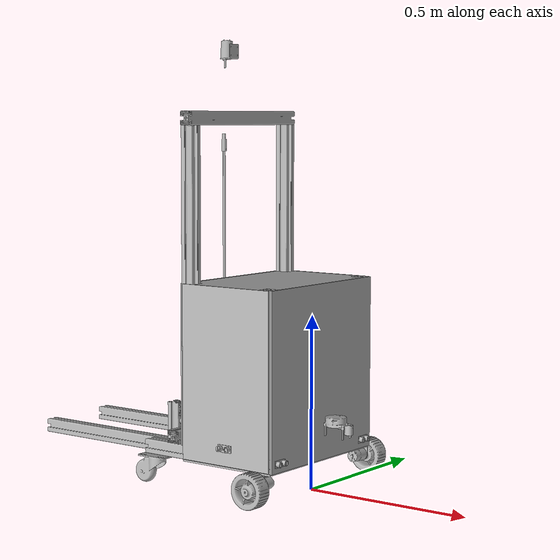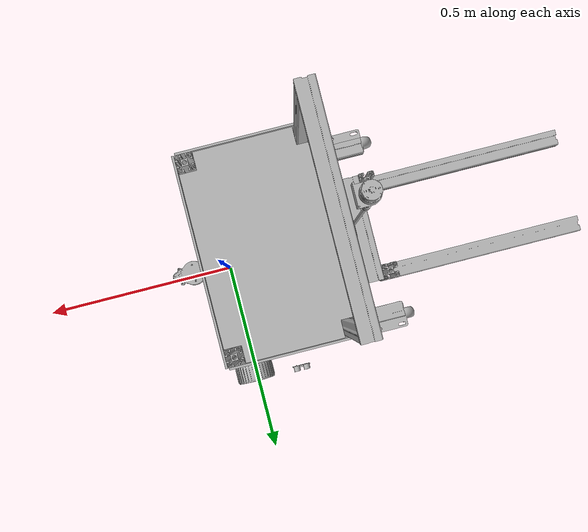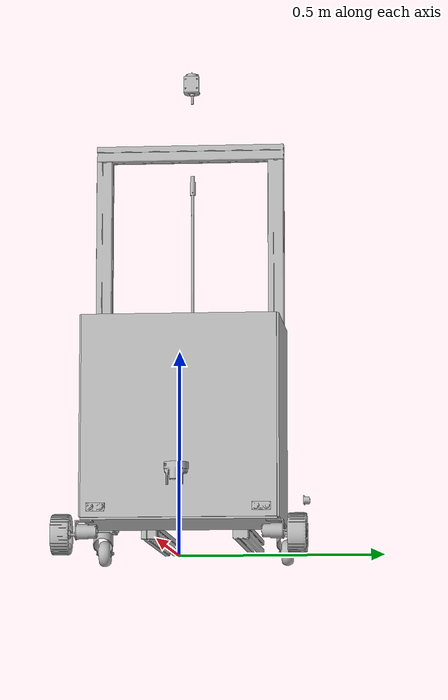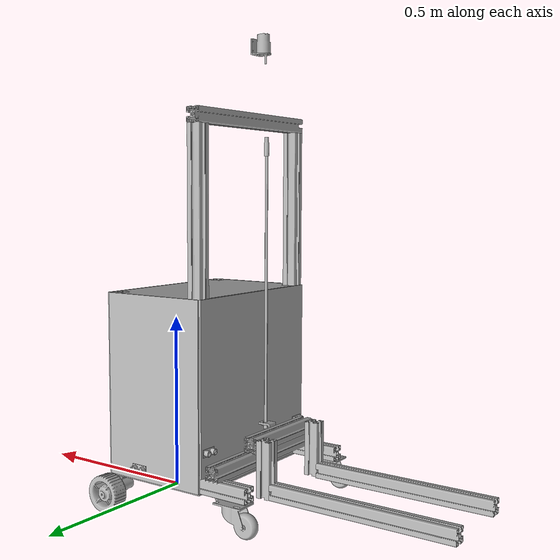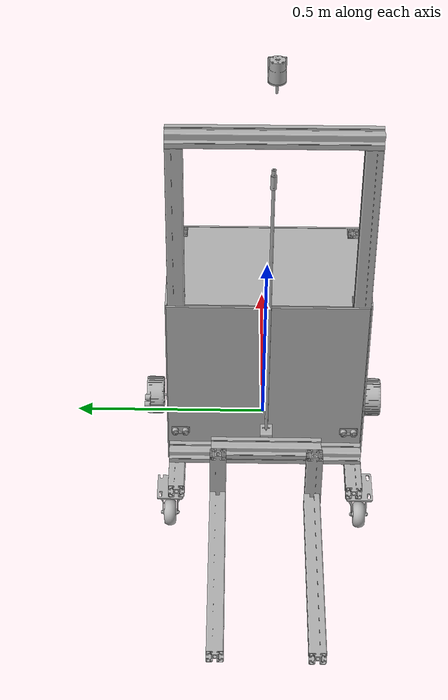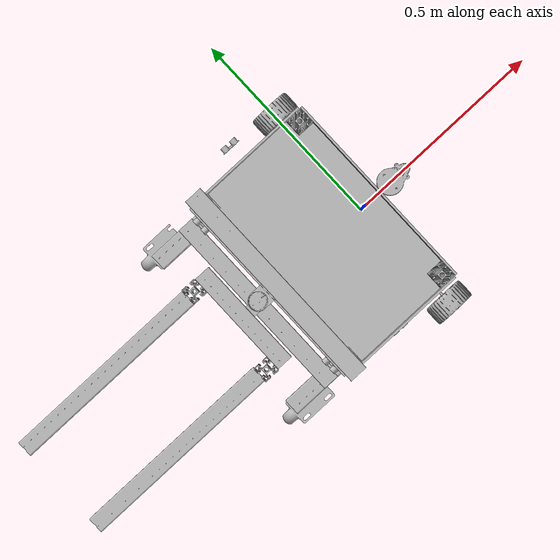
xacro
<?xml version="1.0"?>
<robot name="fork_robot" xmlns:xacro="http://www.ros.org/wiki/xacro">
  <xacro:arg name="use_camera" default="false" />

<material name="silver">
  <color rgba="0.700 0.700 0.700 1.000"/>
</material>

<link name="base_link">
  <inertial>
    <origin xyz="-0.20798536917927715 0.6074770385144476 0.0025" rpy="0 0 0"/>
    <mass value="6.943770210382302"/>
    <inertia ixx="0.053873" iyy="0.194565" izz="0.248409" ixy="-1.9e-05" iyz="0.0" ixz="0.0"/>
  </inertial>
  <visual>
    <origin xyz="0 0 0" rpy="0 0 0"/>
    <geometry>
      <mesh filename="file://$(find mybot_description)/meshes/base_link.stl" scale="0.001 0.001 0.001"/>
    </geometry>
    <material name="silver"/>
  </visual>
  <collision><origin xyz="-0.208 0.6075 0.34" rpy="0 0 0"/><geometry><box size="0.6 0.325 0.68"/></geometry></collision>
</link>

<link name="left_motor_link_1">
  <inertial>
    <origin xyz="-0.025746420161885983 -5.5906449600851005e-06 0.006676741521228598" rpy="0 0 0"/>
    <mass value="0.12785022222079845"/>
    <inertia ixx="2.3e-05" iyy="5.6e-05" izz="5.6e-05" ixy="-0.0" iyz="0.0" ixz="2e-06"/>
  </inertial>
  <visual>
    <origin xyz="-0.097079 -0.484372 0.034" rpy="0 0 0"/>
    <geometry>
      <mesh filename="file://$(find mybot_description)/meshes/left_motor_link_1.stl" scale="0.001 0.001 0.001"/>
    </geometry>
    <material name="silver"/>
  </visual>
</link>

<link name="right_motor_link_1">
  <inertial>
    <origin xyz="0.025746420161885775 3.9798783471045596e-06 0.006673230990990191" rpy="0 0 0"/>
    <mass value="0.12785022222079845"/>
    <inertia ixx="2.3e-05" iyy="5.6e-05" izz="5.6e-05" ixy="-0.0" iyz="-0.0" ixz="-2e-06"/>
  </inertial>
  <visual>
    <origin xyz="0.512989 -0.484372 0.034" rpy="0 0 0"/>
    <geometry>
      <mesh filename="file://$(find mybot_description)/meshes/right_motor_link_1.stl" scale="0.001 0.001 0.001"/>
    </geometry>
    <material name="silver"/>
  </visual>
</link>

<link name="left_wheel_link_1">
  <inertial>
    <origin xyz="2.589702400856986e-07 -2.0531276034851942e-07 3.703704010149522e-13" rpy="0 0 0"/>
    <mass value="1.9401899677229664"/>
    <inertia ixx="0.002715" iyy="0.001642" izz="0.001642" ixy="0.0" iyz="-0.0" ixz="0.0"/>
  </inertial>
  <visual>
    <origin xyz="-0.130827 -0.484372 0.034" rpy="0 0 0"/>
    <geometry>
      <mesh filename="file://$(find mybot_description)/meshes/left_wheel_link_1.stl" scale="0.001 0.001 0.001"/>
    </geometry>
    <material name="silver"/>
  </visual>
  <collision><origin xyz="2.5897e-07 -2.05313e-07 3.7037e-13" rpy="0 1.5708 0"/><geometry><cylinder radius="0.053" length="0.04"/></geometry></collision>
</link>

<link name="right_wheel_link_1">
  <inertial>
    <origin xyz="5.004531045127436e-08 -2.0517171461786887e-07 2.9867081030587883e-13" rpy="0 0 0"/>
    <mass value="1.9401899677229664"/>
    <inertia ixx="0.002715" iyy="0.001642" izz="0.001642" ixy="0.0" iyz="-0.0" ixz="0.0"/>
  </inertial>
  <visual>
    <origin xyz="0.54774 -0.484372 0.034" rpy="0 0 0"/>
    <geometry>
      <mesh filename="file://$(find mybot_description)/meshes/right_wheel_link_1.stl" scale="0.001 0.001 0.001"/>
    </geometry>
    <material name="silver"/>
  </visual>
  <collision><origin xyz="5.00453e-08 -2.05172e-07 2.98671e-13" rpy="0 1.5708 0"/><geometry><cylinder radius="0.053" length="0.04"/></geometry></collision>
</link>

<link name="fork_rear_slot_right_link_1">
  <inertial>
    <origin xyz="0.020000308159449587 0.016999794757661002 -0.5499999999999772" rpy="0 0 0"/>
    <mass value="1.6079227622387897"/>
    <inertia ixx="0.16237" iyy="0.16237" izz="0.000475" ixy="-0.0" iyz="-0.0" ixz="-0.0"/>
  </inertial>
  <visual>
    <origin xyz="0.497455 -0.725081 -1.145" rpy="0 0 0"/>
    <geometry>
      <mesh filename="file://$(find mybot_description)/meshes/fork_rear_slot_right_link_1.stl" scale="0.001 0.001 0.001"/>
    </geometry>
    <material name="silver"/>
  </visual>
</link>

<link name="lead_motor_link_1">
  <inertial>
    <origin xyz="-5.571494613665351e-06 -0.006675563568607545 0.025746024624354158" rpy="0 0 0"/>
    <mass value="0.12785022222079845"/>
    <inertia ixx="5.6e-05" iyy="5.6e-05" izz="2.3e-05" ixy="-0.0" iyz="2e-06" ixz="-0.0"/>
  </inertial>
  <visual>
    <origin xyz="0.209955 -0.796081 -1.1343" rpy="0 0 0"/>
    <geometry>
      <mesh filename="file://$(find mybot_description)/meshes/lead_motor_link_1.stl" scale="0.001 0.001 0.001"/>
    </geometry>
    <material name="silver"/>
  </visual>
</link>

<link name="coupling_link_1">
  <inertial>
    <origin xyz="-0.7798636919107719 0.7960807588890809 1.1183430344970238" rpy="0 0 0"/>
    <mass value="0.03211224123272413"/>
    <inertia ixx="5e-06" iyy="5e-06" izz="1e-06" ixy="-0.0" iyz="-0.0" ixz="-0.0"/>
  </inertial>
  <visual>
    <origin xyz="-0.569909 0.0 0.0215" rpy="0 0 0"/>
    <geometry>
      <mesh filename="file://$(find mybot_description)/meshes/coupling_link_1.stl" scale="0.001 0.001 0.001"/>
    </geometry>
    <material name="silver"/>
  </visual>
</link>

<link name="lead_screw_link_1">
  <inertial>
    <origin xyz="0.209955 -0.796081 -1.09405" rpy="0 0 0"/>
    <mass value="0.0"/>
    <inertia ixx="0.0" iyy="0.0" izz="0.0" ixy="0.0" iyz="0.0" ixz="0.0"/>
  </inertial>
  <visual>
    <origin xyz="0.209955 -0.796081 -1.09405" rpy="0 0 0"/>
    <geometry>
      <mesh filename="file://$(find mybot_description)/meshes/lead_screw_link_1.stl" scale="0.001 0.001 0.001"/>
    </geometry>
    <material name="silver"/>
  </visual>
</link>

<link name="fork_coupling_link_1">
  <inertial>
    <origin xyz="3.704621314715162e-07 -1.82611086141371e-07 -0.003490428234806414" rpy="0 0 0"/>
    <mass value="0.012051917875242903"/>
    <inertia ixx="0.0" iyy="0.0" izz="1e-06" ixy="0.0" iyz="0.0" ixz="0.0"/>
  </inertial>
  <visual>
    <origin xyz="0.209955 -0.796081 -0.17155" rpy="0 0 0"/>
    <geometry>
      <mesh filename="file://$(find mybot_description)/meshes/fork_coupling_link_1.stl" scale="0.001 0.001 0.001"/>
    </geometry>
    <material name="silver"/>
  </visual>
</link>

<link name="fork_holder_link_1">
  <inertial>
    <origin xyz="0 0 0" rpy="0 0 0"/>
    <mass value="0.06369340089197861"/>
    <inertia ixx="1.3e-05" iyy="1e-05" izz="1.3e-05" ixy="0.0" iyz="4e-06" ixz="-0.0"/>
  </inertial>
  <visual>
    <origin xyz="0.209955 -0.808169 -0.167762" rpy="0 0 0"/>
    <geometry>
      <mesh filename="file://$(find mybot_description)/meshes/fork_holder_link_1.stl" scale="0.001 0.001 0.001"/>
    </geometry>
    <material name="silver"/>
  </visual>
</link>

<link name="fork_center_slot_1">
  <inertial>
    <origin xyz="3.080890577378259e-07 0.02000049498194556 -0.01140000000014843" rpy="0 0 0"/>
    <mass value="0.3946719507313423"/>
    <inertia ixx="0.000117" iyy="0.002456" izz="0.002456" ixy="0.0" iyz="-0.0" ixz="0.0"/>
  </inertial>
  <visual>
    <origin xyz="0.209955 -0.819621 -0.16005" rpy="0 0 0"/>
    <geometry>
      <mesh filename="file://$(find mybot_description)/meshes/fork_center_slot_1.stl" scale="0.001 0.001 0.001"/>
    </geometry>
    <material name="silver"/>
  </visual>
</link>

<link name="fork_left_link_1">
  <inertial>
    <origin xyz="-0.01699969191092429 0.25000049498193877 0.020000000000006565" rpy="0 0 0"/>
    <mass value="0.7308739828358146"/>
    <inertia ixx="0.015334" iyy="0.000216" izz="0.015334" ixy="-0.0" iyz="0.0" ixz="0.0"/>
  </inertial>
  <visual>
    <origin xyz="0.074955 -0.899621 -0.01565" rpy="0 0 0"/>
    <geometry>
      <mesh filename="file://$(find mybot_description)/meshes/fork_left_link_1.stl" scale="0.001 0.001 0.001"/>
    </geometry>
    <material name="silver"/>
  </visual>
  <collision><origin xyz="-0.0169997 0.25 0.02" rpy="0 0 0"/><geometry><box size="0.04 0.5 0.04"/></geometry></collision>
</link>

<link name="fork_right_link_1">
  <inertial>
    <origin xyz="0.02000030808907538 0.250000494981947 0.017000000000006104" rpy="0 0 0"/>
    <mass value="0.730873982835814"/>
    <inertia ixx="0.015334" iyy="0.000216" izz="0.015334" ixy="-0.0" iyz="-0.0" ixz="0.0"/>
  </inertial>
  <visual>
    <origin xyz="0.344955 -0.899621 -0.01565" rpy="0 0 0"/>
    <geometry>
      <mesh filename="file://$(find mybot_description)/meshes/fork_right_link_1.stl" scale="0.001 0.001 0.001"/>
    </geometry>
    <material name="silver"/>
  </visual>
  <collision><origin xyz="0.0200003 0.25 0.017" rpy="0 0 0"/><geometry><box size="0.04 0.5 0.04"/></geometry></collision>
</link>

<link name="left_caster_link_1">
  <inertial>
    <origin xyz="0.03250031161157105 -0.01040190184053058 -0.03942068950413622" rpy="0 0 0"/>
    <mass value="0.12271576702932177"/>
    <inertia ixx="0.000159" iyy="9.1e-05" izz="0.000101" ixy="0.0" iyz="4.8e-05" ixz="-0.0"/>
  </inertial>
  <visual>
    <origin xyz="-0.045045 -0.901881 -0.005" rpy="0 0 0"/>
    <geometry>
      <mesh filename="file://$(find mybot_description)/meshes/left_caster_link_1.stl" scale="0.001 0.001 0.001"/>
    </geometry>
    <material name="silver"/>
  </visual>
  <collision><origin xyz="0.0325003 -0.0104019 -0.039" rpy="0 0 0"/><geometry><sphere radius="0.053"/></geometry></collision>
</link>

<link name="right_caster_link_1">
  <inertial>
    <origin xyz="-0.032499688388431314 -0.010401901840532024 -0.03942068950412401" rpy="0 0 0"/>
    <mass value="0.12271576702932177"/>
    <inertia ixx="0.000159" iyy="9.1e-05" izz="0.000101" ixy="0.0" iyz="4.8e-05" ixz="-0.0"/>
  </inertial>
  <visual>
    <origin xyz="0.460955 -0.901881 -0.005" rpy="0 0 0"/>
    <geometry>
      <mesh filename="file://$(find mybot_description)/meshes/right_caster_link_1.stl" scale="0.001 0.001 0.001"/>
    </geometry>
    <material name="silver"/>
  </visual>
  <collision><origin xyz="-0.0324997 -0.0104019 -0.039" rpy="0 0 0"/><geometry><sphere radius="0.053"/></geometry></collision>
</link>

<link name="fork_left_h_slot_1">
  <inertial>
    <origin xyz="-0.01699969191109199 0.02000049498194334 -0.07499999999999676" rpy="0 0 0"/>
    <mass value="0.21926219485074544"/>
    <inertia ixx="0.000444" iyy="0.000444" izz="6.5e-05" ixy="0.0" iyz="-0.0" ixz="0.0"/>
  </inertial>
  <visual>
    <origin xyz="0.074955 -0.859621 -0.16565" rpy="0 0 0"/>
    <geometry>
      <mesh filename="file://$(find mybot_description)/meshes/fork_left_h_slot_1.stl" scale="0.001 0.001 0.001"/>
    </geometry>
    <material name="silver"/>
  </visual>
</link>

<link name="fork_right_h_slot_1">
  <inertial>
    <origin xyz="0.017000308089210492 0.02000049498194878 -0.07499999999999708" rpy="0 0 0"/>
    <mass value="0.21926219485074516"/>
    <inertia ixx="0.000444" iyy="0.000444" izz="6.5e-05" ixy="-0.0" iyz="0.0" ixz="-0.0"/>
  </inertial>
  <visual>
    <origin xyz="0.344955 -0.859621 -0.16565" rpy="0 0 0"/>
    <geometry>
      <mesh filename="file://$(find mybot_description)/meshes/fork_right_h_slot_1.stl" scale="0.001 0.001 0.001"/>
    </geometry>
    <material name="silver"/>
  </visual>
</link>

<link name="front_bottom_slot_link_1">
  <inertial>
    <origin xyz="3.0815943299900006e-07 0.016999794757658004 0.020000000000000243" rpy="0 0 0"/>
    <mass value="0.7308739828358137"/>
    <inertia ixx="0.000216" iyy="0.015334" izz="0.015334" ixy="-0.0" iyz="0.0" ixz="0.0"/>
  </inertial>
  <visual>
    <origin xyz="0.207955 -0.454881 -0.005" rpy="0 0 0"/>
    <geometry>
      <mesh filename="file://$(find mybot_description)/meshes/front_bottom_slot_link_1.stl" scale="0.001 0.001 0.001"/>
    </geometry>
    <material name="silver"/>
  </visual>
</link>

<link name="right_bottom_slot_link_1">
  <inertial>
    <origin xyz="-0.01999969184072381 0.22499979475765797 0.005800000000005644" rpy="0 0 0"/>
    <mass value="0.6577865845522363"/>
    <inertia ixx="0.011197" iyy="0.000194" izz="0.011197" ixy="0.0" iyz="0.0" ixz="-0.0"/>
  </inertial>
  <visual>
    <origin xyz="0.457955 -0.451881 -0.0192" rpy="0 0 0"/>
    <geometry>
      <mesh filename="file://$(find mybot_description)/meshes/right_bottom_slot_link_1.stl" scale="0.001 0.001 0.001"/>
    </geometry>
    <material name="silver"/>
  </visual>
</link>

<link name="left_bottom_slot_link_1">
  <inertial>
    <origin xyz="0.02000465052056752 0.22493656292787567 0.005791117897822731" rpy="0 0 0"/>
    <mass value="0.6580463549947716"/>
    <inertia ixx="0.011204" iyy="0.000194" izz="0.011204" ixy="0.0" iyz="-1e-06" ixz="0.0"/>
  </inertial>
  <visual>
    <origin xyz="-0.042045 -0.451881 -0.0192" rpy="0 0 0"/>
    <geometry>
      <mesh filename="file://$(find mybot_description)/meshes/left_bottom_slot_link_1.stl" scale="0.001 0.001 0.001"/>
    </geometry>
    <material name="silver"/>
  </visual>
</link>

<link name="fork_front_slot_right_link_1">
  <inertial>
    <origin xyz="0.017000308159435817 0.019999794757659395 0.32500000000000717" rpy="0 0 0"/>
    <mass value="0.9501361776865583"/>
    <inertia ixx="0.033593" iyy="0.033593" izz="0.000281" ixy="-0.0" iyz="-0.0" ixz="-0.0"/>
  </inertial>
  <visual>
    <origin xyz="0.494955 -0.451881 -0.045" rpy="0 0 0"/>
    <geometry>
      <mesh filename="file://$(find mybot_description)/meshes/fork_front_slot_right_link_1.stl" scale="0.001 0.001 0.001"/>
    </geometry>
    <material name="silver"/>
  </visual>
</link>

<link name="fork_front_slot_left_link_1">
  <inertial>
    <origin xyz="-0.016999691840561312 0.019999794757660116 0.3249999999999936" rpy="0 0 0"/>
    <mass value="0.9501361776865583"/>
    <inertia ixx="0.033593" iyy="0.033593" izz="0.000281" ixy="0.0" iyz="-0.0" ixz="-0.0"/>
  </inertial>
  <visual>
    <origin xyz="-0.079045 -0.451881 -0.045" rpy="0 0 0"/>
    <geometry>
      <mesh filename="file://$(find mybot_description)/meshes/fork_front_slot_left_link_1.stl" scale="0.001 0.001 0.001"/>
    </geometry>
    <material name="silver"/>
  </visual>
</link>

<link name="rear_bottom_slot_link_1">
  <inertial>
    <origin xyz="-0.0002496918405674453 -0.016999999999999904 0.020000000000000212" rpy="0 0 0"/>
    <mass value="0.7301431088529783"/>
    <inertia ixx="0.000216" iyy="0.015289" izz="0.015289" ixy="-0.0" iyz="0.0" ixz="0.0"/>
  </inertial>
  <visual>
    <origin xyz="0.207955 -0.76 -0.005" rpy="0 0 0"/>
    <geometry>
      <mesh filename="file://$(find mybot_description)/meshes/rear_bottom_slot_link_1.stl" scale="0.001 0.001 0.001"/>
    </geometry>
    <material name="silver"/>
  </visual>
</link>

<link name="fork_rear_slot_left_link_1">
  <inertial>
    <origin xyz="-0.04404569184055067 0.24599979475766054 1.2468809999999908" rpy="0 0 0"/>
    <mass value="1.6079227622387897"/>
    <inertia ixx="0.16237" iyy="0.16237" izz="0.000475" ixy="-0.0" iyz="-0.0" ixz="-0.0"/>
  </inertial>
  <visual>
    <origin xyz="-0.107091 -0.496881 0.651881" rpy="0 0 0"/>
    <geometry>
      <mesh filename="file://$(find mybot_description)/meshes/fork_rear_slot_left_link_1.stl" scale="0.001 0.001 0.001"/>
    </geometry>
    <material name="silver"/>
  </visual>
</link>

<link name="fork_top_slot_link_1">
  <inertial>
    <origin xyz="-0.2894996918405325 -0.005800205242335821 0.02000000000000357" rpy="0 0 0"/>
    <mass value="0.8463520721238725"/>
    <inertia ixx="0.00025" iyy="0.023769" izz="0.023769" ixy="-0.0" iyz="0.0" ixz="0.0"/>
  </inertial>
  <visual>
    <origin xyz="-0.081545 -0.747881 -1.145" rpy="0 0 0"/>
    <geometry>
      <mesh filename="file://$(find mybot_description)/meshes/fork_top_slot_link_1.stl" scale="0.001 0.001 0.001"/>
    </geometry>
    <material name="silver"/>
  </visual>
</link>

<link name="fork_bottom_slot_link_1">
  <inertial>
    <origin xyz="-0.22570469184057362 0.8140807947576636 -0.024999999999987352" rpy="0 0 0"/>
    <mass value="0.8353889623813353"/>
    <inertia ixx="0.000247" iyy="0.022861" izz="0.022861" ixy="-0.0" iyz="0.0" ixz="0.0"/>
  </inertial>
  <visual>
    <origin xyz="-0.017 0.02 -0.09" rpy="0 0 0"/>
    <geometry>
      <mesh filename="file://$(find mybot_description)/meshes/fork_bottom_slot_link_1.stl" scale="0.001 0.001 0.001"/>
    </geometry>
    <material name="silver"/>
  </visual>
</link>

<link name="left_panel_link_1">
  <inertial>
    <origin xyz="0.10554530815944095 0.6238807947576585 0.26149999999999085" rpy="0 0 0"/>
    <mass value="8.2512135"/>
    <inertia ixx="0.388911" iyy="0.324544" izz="0.064401" ixy="0.0" iyz="-0.0" ixz="-0.0"/>
  </inertial>
  <visual>
    <origin xyz="0.02 0.017 -0.09" rpy="0 0 0"/>
    <geometry>
      <mesh filename="file://$(find mybot_description)/meshes/left_panel_link_1.stl" scale="0.001 0.001 0.001"/>
    </geometry>
    <material name="silver"/>
  </visual>
</link>

<link name="right_panel_link_1">
  <inertial>
    <origin xyz="0.47545430815943635 -0.3213812052423414 0.26150000000000606" rpy="0 0 0"/>
    <mass value="8.11638975"/>
    <inertia ixx="0.380503" iyy="0.319241" izz="0.061296" ixy="-0.0" iyz="-0.0" ixz="-0.0"/>
  </inertial>
  <visual>
    <origin xyz="0.975909 -0.926762 -0.09" rpy="0 0 0"/>
    <geometry>
      <mesh filename="file://$(find mybot_description)/meshes/right_panel_link_1.stl" scale="0.001 0.001 0.001"/>
    </geometry>
    <material name="silver"/>
  </visual>
</link>

<link name="top_panel_link_1">
  <inertial>
    <origin xyz="-0.31227225885476906 -0.35763664164238984 -0.047500000000003983" rpy="0 0 0"/>
    <mass value="6.666328787766717"/>
    <inertia ixx="0.048948" iyy="0.174878" izz="0.223798" ixy="0.000206" iyz="0.0" ixz="-0.0"/>
  </inertial>
  <visual>
    <origin xyz="-0.104969 -0.962883 -0.74" rpy="0 0 0"/>
    <geometry>
      <mesh filename="file://$(find mybot_description)/meshes/top_panel_link_1.stl" scale="0.001 0.001 0.001"/>
    </geometry>
    <material name="silver"/>
  </visual>
</link>

<link name="front_panel_link_1">
  <inertial>
    <origin xyz="3.0815943993789396e-07 -0.002500205242342235 0.34349999999999886" rpy="0 0 0"/>
    <mass value="15.585625499999999"/>
    <inertia ixx="0.613027" iyy="1.046903" izz="0.433941" ixy="0.0" iyz="0.0" ixz="-0.0"/>
  </inertial>
  <visual>
    <origin xyz="0.207955 -0.451881 -0.008" rpy="0 0 0"/>
    <geometry>
      <mesh filename="file://$(find mybot_description)/meshes/front_panel_link_1.stl" scale="0.001 0.001 0.001"/>
    </geometry>
    <material name="silver"/>
  </visual>
</link>

<link name="rear_panel_link_1">
  <inertial>
    <origin xyz="3.0815943860562633e-07 0.0025000000000000577 0.3249999999999997" rpy="0 0 0"/>
    <mass value="14.746224999999999"/>
    <inertia ixx="0.519221" iyy="0.92973" izz="0.410571" ixy="0.0" iyz="-0.0" ixz="-0.0"/>
  </inertial>
  <visual>
    <origin xyz="0.208205 -0.763 -0.042" rpy="0 0 0"/>
    <geometry>
      <mesh filename="file://$(find mybot_description)/meshes/rear_panel_link_1.stl" scale="0.001 0.001 0.001"/>
    </geometry>
    <material name="silver"/>
  </visual>
</link>

<link name="left_motor_holder_link_1">
  <inertial>
    <origin xyz="0.021620303567720253 0.014999794759322893 -0.010151847427416521" rpy="0 0 0"/>
    <mass value="0.061662152889289286"/>
    <inertia ixx="1.9e-05" iyy="2.2e-05" izz="2e-05" ixy="-0.0" iyz="0.0" ixz="6e-06"/>
  </inertial>
  <visual>
    <origin xyz="-0.062579 -0.469372 -0.0" rpy="0 0 0"/>
    <geometry>
      <mesh filename="file://$(find mybot_description)/meshes/left_motor_holder_link_1.stl" scale="0.001 0.001 0.001"/>
    </geometry>
    <material name="silver"/>
  </visual>
</link>

<link name="lead_motor_holder_link_1">
  <inertial>
    <origin xyz="0.8313003081611321 -0.7319293578149195 0.19013430089474792" rpy="0 0 0"/>
    <mass value="0.061662152889289286"/>
    <inertia ixx="2.2e-05" iyy="2e-05" izz="1.9e-05" ixy="-0.0" iyz="6e-06" ixz="0.0"/>
  </inertial>
  <visual>
    <origin xyz="1.041255 -1.504162 -0.957045" rpy="0 0 0"/>
    <geometry>
      <mesh filename="file://$(find mybot_description)/meshes/lead_motor_holder_link_1.stl" scale="0.001 0.001 0.001"/>
    </geometry>
    <material name="silver"/>
  </visual>
</link>

<link name="bottom_screw_holder_link_1">
  <inertial>
    <origin xyz="-0.23224969183969912 -0.7860812052423365 0.23963661026358374" rpy="0 0 0"/>
    <mass value="0.014958632790476097"/>
    <inertia ixx="2e-06" iyy="2e-06" izz="1e-06" ixy="-0.0" iyz="0.0" ixz="0.0"/>
  </inertial>
  <visual>
    <origin xyz="-0.022545 -1.582362 0.143705" rpy="0 0 0"/>
    <geometry>
      <mesh filename="file://$(find mybot_description)/meshes/bottom_screw_holder_link_1.stl" scale="0.001 0.001 0.001"/>
    </geometry>
    <material name="silver"/>
  </visual>
</link>

<link name="right_motor_holder_link_1">
  <inertial>
    <origin xyz="-0.021620303567720323 0.014999794755993279 -0.010151847427416491" rpy="0 0 0"/>
    <mass value="0.061662152889289286"/>
    <inertia ixx="1.9e-05" iyy="2.2e-05" izz="2e-05" ixy="-0.0" iyz="-0.0" ixz="-6e-06"/>
  </inertial>
  <visual>
    <origin xyz="0.478489 -0.469372 -0.0" rpy="0 0 0"/>
    <geometry>
      <mesh filename="file://$(find mybot_description)/meshes/right_motor_holder_link_1.stl" scale="0.001 0.001 0.001"/>
    </geometry>
    <material name="silver"/>
  </visual>
</link>

<link name="lidar_link_1">
  <inertial>
    <origin xyz="0.08646004253621625 -0.16362834140596594 0.13596700000012296" rpy="0 0 0"/>
    <mass value="0.013064691419369279"/>
    <inertia ixx="1.6e-05" iyy="4e-06" izz="1.8e-05" ixy="0.0" iyz="0.0" ixz="0.0"/>
  </inertial>
  <visual>
    <origin xyz="0.293536 -0.751744 -0.574033" rpy="0 0 0"/>
    <geometry>
      <mesh filename="file://$(find mybot_description)/meshes/lidar_link_1.stl" scale="0.001 0.001 0.001"/>
    </geometry>
    <material name="silver"/>
  </visual>
</link>

<link name="imu_link_1">
  <inertial>
    <origin xyz="0.0004657579007719126 -7.4719617430552e-05 0.0011352557386969941" rpy="0 0 0"/>
    <mass value="0.0006377115631169521"/>
    <inertia ixx="0.0" iyy="0.0" izz="0.0" ixy="0.0" iyz="0.0" ixz="-0.0"/>
  </inertial>
  <visual>
    <origin xyz="0.207076 -0.605649 -0.695" rpy="0 0 0"/>
    <geometry>
      <mesh filename="file://$(find mybot_description)/meshes/imu_link_1.stl" scale="0.001 0.001 0.001"/>
    </geometry>
    <material name="silver"/>
  </visual>
</link>

<link name="ultrasonic_front_left_1">
  <inertial>
    <origin xyz="0.4369542234814906 -0.450874632737084 -0.8037789689737815" rpy="0 0 0"/>
    <mass value="0.0294413230658598"/>
    <inertia ixx="1e-06" iyy="6e-06" izz="5e-06" ixy="0.0" iyz="0.0" ixz="0.0"/>
  </inertial>
  <visual>
    <origin xyz="0.415909 -0.893762 -0.8615" rpy="0 0 0"/>
    <geometry>
      <mesh filename="file://$(find mybot_description)/meshes/ultrasonic_front_left_1.stl" scale="0.001 0.001 0.001"/>
    </geometry>
    <material name="silver"/>
  </visual>
</link>

<link name="ultrasonic_front_right_1">
  <inertial>
    <origin xyz="0.5469542234814928 -0.450874632737084 -0.8037789689737698" rpy="0 0 0"/>
    <mass value="0.0294413230658598"/>
    <inertia ixx="1e-06" iyy="6e-06" izz="5e-06" ixy="0.0" iyz="0.0" ixz="0.0"/>
  </inertial>
  <visual>
    <origin xyz="0.993909 -0.893762 -0.8615" rpy="0 0 0"/>
    <geometry>
      <mesh filename="file://$(find mybot_description)/meshes/ultrasonic_front_right_1.stl" scale="0.001 0.001 0.001"/>
    </geometry>
    <material name="silver"/>
  </visual>
</link>

<link name="ultrasonic_side_right_1">
  <inertial>
    <origin xyz="-0.5119481193353107 -0.4548811205644019 -0.4697789689737702" rpy="0 0 0"/>
    <mass value="0.0294413230658598"/>
    <inertia ixx="6e-06" iyy="1e-06" izz="5e-06" ixy="-0.0" iyz="-0.0" ixz="0.0"/>
  </inertial>
  <visual>
    <origin xyz="-0.005 -1.060262 -0.5275" rpy="0 0 0"/>
    <geometry>
      <mesh filename="file://$(find mybot_description)/meshes/ultrasonic_side_right_1.stl" scale="0.001 0.001 0.001"/>
    </geometry>
    <material name="silver"/>
  </visual>
</link>

<link name="ultrasonic_side_left_1">
  <inertial>
    <origin xyz="-0.07905226434582698 -0.458881289920285 -0.4857789689737842" rpy="0 0 0"/>
    <mass value="0.0294413230658598"/>
    <inertia ixx="6e-06" iyy="1e-06" izz="5e-06" ixy="-0.0" iyz="0.0" ixz="-0.0"/>
  </inertial>
  <visual>
    <origin xyz="-0.171091 -1.065762 -0.5435" rpy="0 0 0"/>
    <geometry>
      <mesh filename="file://$(find mybot_description)/meshes/ultrasonic_side_left_1.stl" scale="0.001 0.001 0.001"/>
    </geometry>
    <material name="silver"/>
  </visual>
</link>

<link name="ultrasonic_rear_right_1">
  <inertial>
    <origin xyz="0.5272043928373756 0.7719934274947409 -0.7387789689737696" rpy="0 0 0"/>
    <mass value="0.0294413230658598"/>
    <inertia ixx="1e-06" iyy="6e-06" izz="5e-06" ixy="0.0" iyz="-0.0" ixz="-0.0"/>
  </inertial>
  <visual>
    <origin xyz="0.994409 -0.0 -0.8455" rpy="0 0 0"/>
    <geometry>
      <mesh filename="file://$(find mybot_description)/meshes/ultrasonic_rear_right_1.stl" scale="0.001 0.001 0.001"/>
    </geometry>
    <material name="silver"/>
  </visual>
</link>

<link name="ultrasonic_rear_left_1">
  <inertial>
    <origin xyz="0.46720439283737447 0.7719934274947414 -0.7387789689737826" rpy="0 0 0"/>
    <mass value="0.0294413230658598"/>
    <inertia ixx="1e-06" iyy="6e-06" izz="5e-06" ixy="0.0" iyz="-0.0" ixz="-0.0"/>
  </inertial>
  <visual>
    <origin xyz="0.416409 -0.0 -0.8455" rpy="0 0 0"/>
    <geometry>
      <mesh filename="file://$(find mybot_description)/meshes/ultrasonic_rear_left_1.stl" scale="0.001 0.001 0.001"/>
    </geometry>
    <material name="silver"/>
  </visual>
</link>

<joint name="Rigid_15" type="fixed">
  <origin xyz="0.0345 0.015 -0.034" rpy="0 0 0"/>
  <parent link="left_motor_holder_link_1"/>
  <child link="left_motor_link_1"/>
</joint>

<joint name="Rigid_16" type="fixed">
  <origin xyz="-0.0345 0.015 -0.034" rpy="0 0 0"/>
  <parent link="right_motor_holder_link_1"/>
  <child link="right_motor_link_1"/>
</joint>

<joint name="Rigid_17" type="continuous">
  <origin xyz="0.033748 0.0 0.0" rpy="0 0 0"/>
  <parent link="left_motor_link_1"/>
  <child link="left_wheel_link_1"/>
  <axis xyz="1 0 0"/>
  <dynamics damping="0.2" friction="0.0"/>
  <limit effort="300" velocity="20"/>
</joint>

<joint name="Rigid_18" type="continuous">
  <origin xyz="-0.034751 0.0 0.0" rpy="0 0 0"/>
  <parent link="right_motor_link_1"/>
  <child link="right_wheel_link_1"/>
  <axis xyz="1 0 0"/>
  <dynamics damping="0.2" friction="0.0"/>
  <limit effort="300" velocity="20"/>
</joint>

<joint name="Rigid_26" type="fixed">
  <origin xyz="-0.579 -0.0228 0.0" rpy="0 0 0"/>
  <parent link="fork_top_slot_link_1"/>
  <child link="fork_rear_slot_right_link_1"/>
</joint>

<joint name="Rigid_35" type="fixed">
  <origin xyz="0.8313 -0.708081 0.177255" rpy="0 0 0"/>
  <parent link="lead_motor_holder_link_1"/>
  <child link="lead_motor_link_1"/>
</joint>

<joint name="Rigid_36" type="fixed">
  <origin xyz="0.779864 -0.796081 -1.1558" rpy="0 0 0"/>
  <parent link="lead_motor_link_1"/>
  <child link="coupling_link_1"/>
</joint>

<joint name="Rigid_38" type="fixed">
  <origin xyz="-0.779864 0.796081 1.11555" rpy="0 0 0"/>
  <parent link="coupling_link_1"/>
  <child link="lead_screw_link_1"/>
</joint>

<joint name="Rigid_42" type="fixed">
  <origin xyz="-3.08089e-07 -0.0120885 0.00378848" rpy="0 0 0"/>
  <parent link="fork_holder_link_1"/>
  <child link="fork_coupling_link_1"/>
</joint>

<joint name="Slider_43" type="prismatic">
  <origin xyz="-0.779864 0.808169 0.189262" rpy="0 0 0"/>
  <parent link="coupling_link_1"/>
  <child link="fork_holder_link_1"/>
  <axis xyz="0 0 1"/>
  <limit lower="0.0" upper="0.8" effort="500" velocity="0.2"/>
  <dynamics damping="200" friction="50"/>
</joint>

<joint name="Rigid_44" type="fixed">
  <origin xyz="-3.08089e-07 0.0114515 -0.00771152" rpy="0 0 0"/>
  <parent link="fork_holder_link_1"/>
  <child link="fork_center_slot_1"/>
</joint>

<joint name="Rigid_47" type="fixed">
  <origin xyz="0.0 0.04 -0.15" rpy="0 0 0"/>
  <parent link="fork_left_h_slot_1"/>
  <child link="fork_left_link_1"/>
</joint>

<joint name="Rigid_48" type="fixed">
  <origin xyz="0.0 0.04 -0.15" rpy="0 0 0"/>
  <parent link="fork_right_h_slot_1"/>
  <child link="fork_right_link_1"/>
</joint>

<joint name="Rigid_58" type="fixed">
  <origin xyz="0.003 0.45 -0.0142" rpy="0 0 0"/>
  <parent link="left_bottom_slot_link_1"/>
  <child link="left_caster_link_1"/>
</joint>

<joint name="Rigid_59" type="fixed">
  <origin xyz="-0.003 0.45 -0.0142" rpy="0 0 0"/>
  <parent link="right_bottom_slot_link_1"/>
  <child link="right_caster_link_1"/>
</joint>

<joint name="Rigid_60" type="fixed">
  <origin xyz="0.135 0.04 0.0056" rpy="0 0 0"/>
  <parent link="fork_center_slot_1"/>
  <child link="fork_left_h_slot_1"/>
</joint>

<joint name="Rigid_61" type="fixed">
  <origin xyz="-0.135 0.04 0.0056" rpy="0 0 0"/>
  <parent link="fork_center_slot_1"/>
  <child link="fork_right_h_slot_1"/>
</joint>

<joint name="Rigid_62" type="fixed">
  <origin xyz="-0.207955 0.454881 0.005" rpy="0 0 0"/>
  <parent link="base_link"/>
  <child link="front_bottom_slot_link_1"/>
</joint>

<joint name="Rigid_63" type="fixed">
  <origin xyz="-0.25 -0.003 0.0142" rpy="0 0 0"/>
  <parent link="front_bottom_slot_link_1"/>
  <child link="right_bottom_slot_link_1"/>
</joint>

<joint name="Rigid_64" type="fixed">
  <origin xyz="0.25 -0.003 0.0142" rpy="0 0 0"/>
  <parent link="front_bottom_slot_link_1"/>
  <child link="left_bottom_slot_link_1"/>
</joint>

<joint name="Rigid_65" type="fixed">
  <origin xyz="-0.037 0.0 0.0258" rpy="0 0 0"/>
  <parent link="right_bottom_slot_link_1"/>
  <child link="fork_front_slot_right_link_1"/>
</joint>

<joint name="Rigid_66" type="fixed">
  <origin xyz="0.037 0.0 0.0258" rpy="0 0 0"/>
  <parent link="left_bottom_slot_link_1"/>
  <child link="fork_front_slot_left_link_1"/>
</joint>

<joint name="Rigid_67" type="fixed">
  <origin xyz="-0.207955 0.76 0.005" rpy="0 0 0"/>
  <parent link="base_link"/>
  <child link="rear_bottom_slot_link_1"/>
</joint>

<joint name="Rigid_68" type="fixed">
  <origin xyz="0.065046 0.045 -0.671081" rpy="0 0 0"/>
  <parent link="left_bottom_slot_link_1"/>
  <child link="fork_rear_slot_left_link_1"/>
</joint>

<joint name="Rigid_70" type="fixed">
  <origin xyz="-0.025546 0.251 1.796881" rpy="0 0 0"/>
  <parent link="fork_rear_slot_left_link_1"/>
  <child link="fork_top_slot_link_1"/>
</joint>

<joint name="Rigid_71" type="fixed">
  <origin xyz="0.514455 -0.745081 -1.055" rpy="0 0 0"/>
  <parent link="fork_rear_slot_right_link_1"/>
  <child link="fork_bottom_slot_link_1"/>
</joint>

<joint name="Rigid_73" type="fixed">
  <origin xyz="-0.127091 -0.513881 0.741881" rpy="0 0 0"/>
  <parent link="fork_rear_slot_left_link_1"/>
  <child link="left_panel_link_1"/>
</joint>

<joint name="Rigid_74" type="fixed">
  <origin xyz="-0.480954 0.474881 0.045" rpy="0 0 0"/>
  <parent link="fork_front_slot_right_link_1"/>
  <child link="right_panel_link_1"/>
</joint>

<joint name="Rigid_75" type="fixed">
  <origin xyz="0.025924 0.511002 0.695" rpy="0 0 0"/>
  <parent link="fork_front_slot_left_link_1"/>
  <child link="top_panel_link_1"/>
</joint>

<joint name="Rigid_76" type="fixed">
  <origin xyz="0.0 -0.003 0.003" rpy="0 0 0"/>
  <parent link="front_bottom_slot_link_1"/>
  <child link="front_panel_link_1"/>
</joint>

<joint name="Rigid_77" type="fixed">
  <origin xyz="-0.00025 0.003 0.037" rpy="0 0 0"/>
  <parent link="rear_bottom_slot_link_1"/>
  <child link="rear_panel_link_1"/>
</joint>

<joint name="Rigid_78" type="fixed">
  <origin xyz="0.062579 0.469372 0.0" rpy="0 0 0"/>
  <parent link="base_link"/>
  <child link="left_motor_holder_link_1"/>
</joint>

<joint name="Rigid_80" type="fixed">
  <origin xyz="-1.1228 0.756281 -0.187955" rpy="0 0 0"/>
  <parent link="fork_top_slot_link_1"/>
  <child link="lead_motor_holder_link_1"/>
</joint>

<joint name="Rigid_81" type="fixed">
  <origin xyz="0.005545 1.602362 -0.233705" rpy="0 0 0"/>
  <parent link="fork_bottom_slot_link_1"/>
  <child link="bottom_screw_holder_link_1"/>
</joint>

<joint name="Rigid_82" type="fixed">
  <origin xyz="-0.478489 0.469372 0.0" rpy="0 0 0"/>
  <parent link="base_link"/>
  <child link="right_motor_holder_link_1"/>
</joint>

<joint name="Rigid_83" type="fixed">
  <origin xyz="-0.398505 -0.211139 -0.165967" rpy="0 0 0"/>
  <parent link="top_panel_link_1"/>
  <child link="lidar_link_1"/>
</joint>

<joint name="Rigid_84" type="fixed">
  <origin xyz="-0.312045 -0.357234 -0.045" rpy="0 0 0"/>
  <parent link="top_panel_link_1"/>
  <child link="imu_link_1"/>
</joint>

<joint name="Rigid_85" type="fixed">
  <origin xyz="-0.207954 0.441881 0.8535" rpy="0 0 0"/>
  <parent link="front_panel_link_1"/>
  <child link="ultrasonic_front_left_1"/>
</joint>

<joint name="Rigid_86" type="fixed">
  <origin xyz="-0.785954 0.441881 0.8535" rpy="0 0 0"/>
  <parent link="front_panel_link_1"/>
  <child link="ultrasonic_front_right_1"/>
</joint>

<joint name="Rigid_87" type="fixed">
  <origin xyz="0.980909 0.1335 0.4375" rpy="0 0 0"/>
  <parent link="right_panel_link_1"/>
  <child link="ultrasonic_side_right_1"/>
</joint>

<joint name="Rigid_88" type="fixed">
  <origin xyz="0.191091 1.082762 0.4535" rpy="0 0 0"/>
  <parent link="left_panel_link_1"/>
  <child link="ultrasonic_side_left_1"/>
</joint>

<joint name="Rigid_89" type="fixed">
  <origin xyz="-0.786204 -0.763 0.8035" rpy="0 0 0"/>
  <parent link="rear_panel_link_1"/>
  <child link="ultrasonic_rear_right_1"/>
</joint>

<joint name="Rigid_90" type="fixed">
  <origin xyz="-0.208204 -0.763 0.8035" rpy="0 0 0"/>
  <parent link="rear_panel_link_1"/>
  <child link="ultrasonic_rear_left_1"/>
</joint>

<link name="base_footprint">
  <inertial>
    <origin xyz="0 0 0" rpy="0 0 0"/>
    <mass value="0.01"/>
    <inertia ixx="1e-6" ixy="0" ixz="0" iyy="1e-6" iyz="0" izz="1e-6"/>
  </inertial>
</link>

<joint name="base_footprint_joint" type="fixed">
  <parent link="base_footprint"/>
  <child link="base_link"/>
  <origin xyz="0.484372 0.208456 0.087" rpy="0 0 1.570796"/>
</joint>

<link name="battery_link">
  <inertial>
    <origin xyz="0 0 0" rpy="0 0 0"/>
    <mass value="200.0"/>
    <inertia ixx="1.2817" ixy="0" ixz="0" iyy="1.7400" iyz="0" izz="2.5417"/>
  </inertial>
</link>

<joint name="battery_joint" type="fixed">
  <parent link="base_footprint"/>
  <child link="battery_link"/>
  <origin xyz="-0.1231 0.0005 0.183" rpy="0 0 0"/>
</joint>

<link name="laser_link">
  <inertial>
    <mass value="0.001"/>
    <inertia ixx="1e-6" ixy="0" ixz="0" iyy="1e-6" iyz="0" izz="1e-6"/>
  </inertial>
</link>

<joint name="laser_joint" type="fixed">
  <parent link="lidar_link_1"/>
  <child link="laser_link"/>
  <origin xyz="0.08646 -0.163628 0.135967" rpy="0 0 1.570796"/>
</joint>

<link name="imu_link">
  <inertial>
    <mass value="0.001"/>
    <inertia ixx="1e-6" ixy="0" ixz="0" iyy="1e-6" iyz="0" izz="1e-6"/>
  </inertial>
</link>

<joint name="imu_joint" type="fixed">
  <parent link="imu_link_1"/>
  <child link="imu_link"/>
  <origin xyz="0 0 0" rpy="0 0 -1.570796"/>
</joint>

<ros2_control name="GazeboSystem" type="system">
  <hardware>
    <plugin>gazebo_ros2_control/GazeboSystem</plugin>
  </hardware>
  <joint name="Rigid_17">
    <command_interface name="velocity">
      <param name="min">-10</param>
      <param name="max">10</param>
    </command_interface>
    <state_interface name="position"/>
    <state_interface name="velocity"/>
  </joint>
  <joint name="Rigid_18">
    <command_interface name="velocity">
      <param name="min">-10</param>
      <param name="max">10</param>
    </command_interface>
    <state_interface name="position"/>
    <state_interface name="velocity"/>
  </joint>
  <joint name="Slider_43">
    <command_interface name="position"/>
    <state_interface name="position">
      <param name="initial_value">0.0</param>
    </state_interface>
    <state_interface name="velocity"/>
  </joint>
</ros2_control>

<gazebo>
  <plugin name="gazebo_ros2_control" filename="libgazebo_ros2_control.so">
    <robot_param>robot_description</robot_param>
    <robot_param_node>robot_state_publisher</robot_param_node>
    <parameters>$(find mybot_gazebo)/config/fork_controllers.yaml</parameters>
    <ros>
      <remapping>diff_drive_controller/odom:=/odom</remapping>
      <remapping>diff_drive_controller/cmd_vel_unstamped:=/cmd_vel</remapping>
    </ros>
  </plugin>
</gazebo>

<gazebo reference="base_link">
  <material>Gazebo/Grey</material>
  <self_collide>false</self_collide>
</gazebo>

<gazebo reference="left_wheel_link_1">
  <material>Gazebo/Black</material>
  <mu1>1.2</mu1>
  <mu2>1.2</mu2>
  <kp>1000000.0</kp>
  <kd>100.0</kd>
  <minDepth>0.001</minDepth>
  <maxVel>1.0</maxVel>
</gazebo>

<gazebo reference="right_wheel_link_1">
  <material>Gazebo/Black</material>
  <mu1>1.2</mu1>
  <mu2>1.2</mu2>
  <kp>1000000.0</kp>
  <kd>100.0</kd>
  <minDepth>0.001</minDepth>
  <maxVel>1.0</maxVel>
</gazebo>

<gazebo reference="left_caster_link_1">
  <mu1>0.05</mu1>
  <mu2>0.05</mu2>
  <kp>1000000.0</kp>
  <kd>10.0</kd>
  <minDepth>0.001</minDepth>
  <maxVel>1.0</maxVel>
</gazebo>

<gazebo reference="right_caster_link_1">
  <mu1>0.05</mu1>
  <mu2>0.05</mu2>
  <kp>1000000.0</kp>
  <kd>10.0</kd>
  <minDepth>0.001</minDepth>
  <maxVel>1.0</maxVel>
</gazebo>

<gazebo reference="laser_link">
  <sensor name="lidar_sensor" type="ray">
    <always_on>true</always_on>
    <visualize>true</visualize>
    <update_rate>30</update_rate>
    <ray>
      <scan>
        <horizontal>
          <samples>180</samples>
          <resolution>1</resolution>
          <min_angle>1.5708</min_angle>
          <max_angle>4.7124</max_angle>
        </horizontal>
      </scan>
      <range>
        <min>0.12</min>
        <max>10.0</max>
        <resolution>0.01</resolution>
      </range>
      <noise>
        <type>gaussian</type>
        <mean>0.0</mean>
        <stddev>0.01</stddev>
      </noise>
    </ray>
    <plugin name="laser_plugin" filename="libgazebo_ros_ray_sensor.so">
      <ros>
        <remapping>~/out:=/scan</remapping>
      </ros>
      <frame_name>laser_link</frame_name>
      <output_type>sensor_msgs/LaserScan</output_type>
    </plugin>
  </sensor>
</gazebo>

<gazebo reference="imu_link">
  <sensor name="imu_sensor" type="imu">
    <always_on>true</always_on>
    <update_rate>100</update_rate>
    <visualize>false</visualize>
    <imu>
      <angular_velocity>
        <x><noise type="gaussian"><mean>0.0</mean><stddev>0.0002</stddev></noise></x>
        <y><noise type="gaussian"><mean>0.0</mean><stddev>0.0002</stddev></noise></y>
        <z><noise type="gaussian"><mean>0.0</mean><stddev>0.0002</stddev></noise></z>
      </angular_velocity>
      <linear_acceleration>
        <x><noise type="gaussian"><mean>0.0</mean><stddev>0.017</stddev></noise></x>
        <y><noise type="gaussian"><mean>0.0</mean><stddev>0.017</stddev></noise></y>
        <z><noise type="gaussian"><mean>0.0</mean><stddev>0.017</stddev></noise></z>
      </linear_acceleration>
    </imu>
    <plugin name="imu_plugin" filename="libgazebo_ros_imu_sensor.so">
      <ros>
        <namespace>/</namespace>
        <remapping>~/out:=imu</remapping>
      </ros>
      <frame_name>imu_link</frame_name>
      <initial_orientation_as_reference>false</initial_orientation_as_reference>
    </plugin>
  </sensor>
</gazebo>

<xacro:macro name="ultrasonic_sensor" params="name parent xyz yaw">
  <link name="${name}_sensor_link">
    <inertial>
      <mass value="0.001"/>
      <inertia ixx="1e-6" ixy="0" ixz="0" iyy="1e-6" iyz="0" izz="1e-6"/>
    </inertial>
  </link>
  <joint name="${name}_sensor_joint" type="fixed">
    <parent link="${parent}"/>
    <child link="${name}_sensor_link"/>
    <origin xyz="${xyz}" rpy="0 0 ${yaw}"/>
  </joint>
  <gazebo reference="${name}_sensor_link">
    <sensor name="${name}_sensor" type="ray">
      <always_on>true</always_on>
      <visualize>false</visualize>
      <update_rate>10</update_rate>
      <ray>
        <scan>
          <horizontal>
            <samples>5</samples>
            <resolution>1</resolution>
            <min_angle>-0.13</min_angle>
            <max_angle>0.13</max_angle>
          </horizontal>
          <vertical>
            <samples>1</samples>
            <resolution>1</resolution>
            <min_angle>0.0</min_angle>
            <max_angle>0.0</max_angle>
          </vertical>
        </scan>
        <range>
          <min>0.05</min>
          <max>4.0</max>
          <resolution>0.01</resolution>
        </range>
        <noise>
          <type>gaussian</type>
          <mean>0.0</mean>
          <stddev>0.005</stddev>
        </noise>
      </ray>
      <plugin name="${name}_plugin" filename="libgazebo_ros_ray_sensor.so">
        <ros>
          <remapping>~/out:=/${name}</remapping>
        </ros>
        <output_type>sensor_msgs/Range</output_type>
        <radiation_type>ultrasound</radiation_type>
        <frame_name>${name}_sensor_link</frame_name>
      </plugin>
    </sensor>
  </gazebo>
</xacro:macro>

<xacro:ultrasonic_sensor name="ultrasonic_front_left" parent="ultrasonic_front_left_1" xyz="0.4369542234814906 -0.450874632737084 -0.8037789689737815" yaw="-1.570796"/>
<xacro:ultrasonic_sensor name="ultrasonic_front_right" parent="ultrasonic_front_right_1" xyz="0.5469542234814928 -0.450874632737084 -0.8037789689737698" yaw="-1.570796"/>
<xacro:ultrasonic_sensor name="ultrasonic_rear_left" parent="ultrasonic_rear_left_1" xyz="0.46720439283737447 0.7719934274947414 -0.7387789689737826" yaw="1.570796"/>
<xacro:ultrasonic_sensor name="ultrasonic_rear_right" parent="ultrasonic_rear_right_1" xyz="0.5272043928373756 0.7719934274947409 -0.7387789689737696" yaw="1.570796"/>
<xacro:ultrasonic_sensor name="ultrasonic_side_left" parent="ultrasonic_side_left_1" xyz="-0.07905226434582698 -0.458881289920285 -0.4857789689737842" yaw="0.000000"/>
<xacro:ultrasonic_sensor name="ultrasonic_side_right" parent="ultrasonic_side_right_1" xyz="-0.5119481193353107 -0.4548811205644019 -0.4697789689737702" yaw="-3.141593"/>

</robot>
